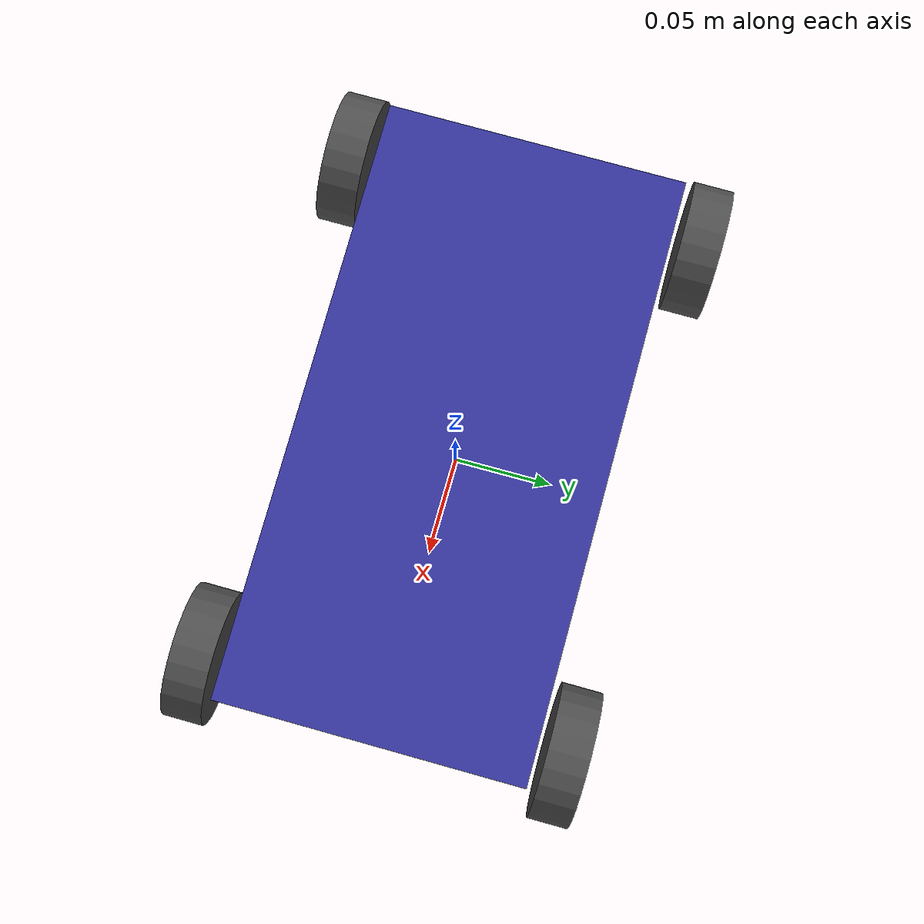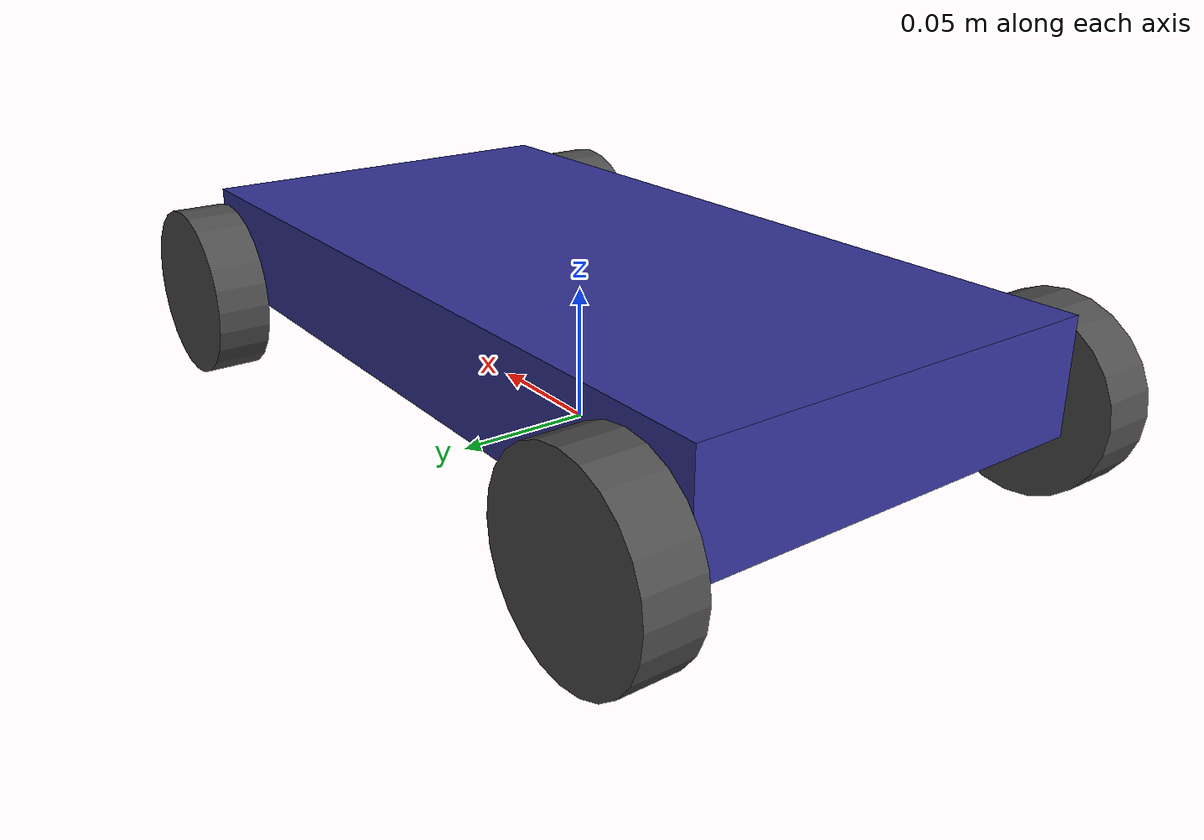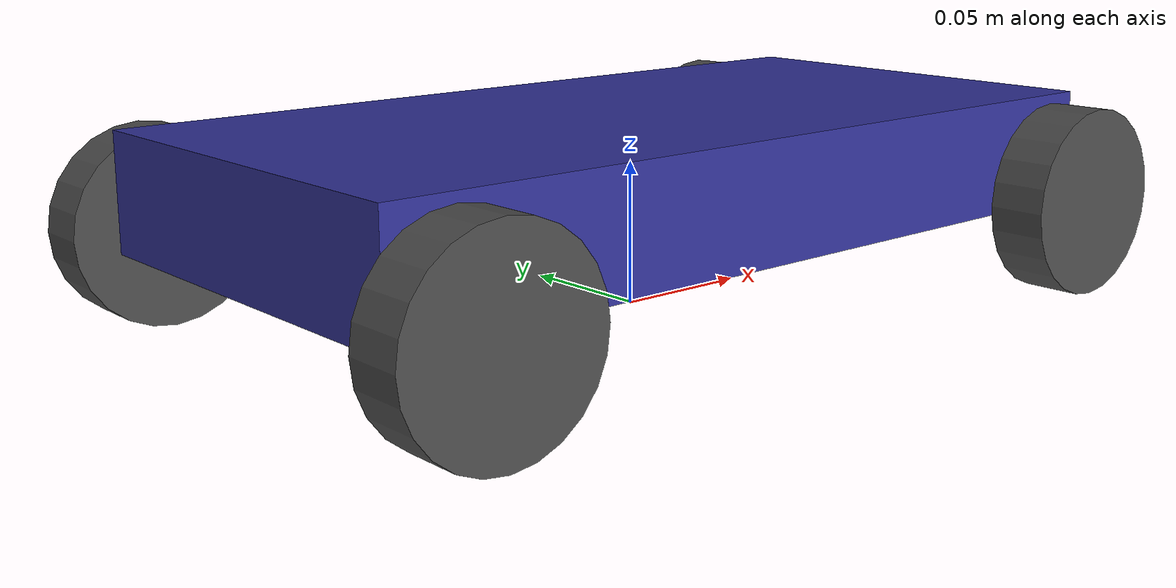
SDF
<?xml version="1.0" ?>
<sdf version="1.8">
  <model name="drift_car">

    <!-- ==================== CHASSIS ==================== -->
    <link name="base_link">
      <pose>0 0 0.048 0 0 0</pose>

      <inertial>
        <mass>1.0</mass>
        <pose>0 0 0 0 0 0</pose>
        <inertia>
          <ixx>0.00192</ixx>
          <ixy>0</ixy>
          <ixz>0</ixz>
          <iyy>0.00763</iyy>
          <iyz>0</iyz>
          <izz>0.00938</izz>
        </inertia>
      </inertial>

      <visual name="chassis_visual">
        <geometry>
          <box>
            <size>0.30 0.15 0.04</size>
          </box>
        </geometry>
        <material>
          <ambient>0.1 0.1 0.4 1</ambient>
          <diffuse>0.2 0.2 0.6 1</diffuse>
          <specular>0.3 0.3 0.3 1</specular>
        </material>
      </visual>

      <collision name="chassis_collision">
        <geometry>
          <box>
            <size>0.30 0.15 0.04</size>
          </box>
        </geometry>
      </collision>
    </link>

    <!-- ==================== REAR LEFT WHEEL ==================== -->
    <link name="rear_left_wheel">
      <pose relative_to="rear_left_wheel_joint">0 0 0 0 0 0</pose>

      <inertial>
        <mass>0.125</mass>
        <inertia>
          <ixx>0.000038</ixx>
          <ixy>0</ixy>
          <ixz>0</ixz>
          <iyy>0.000038</iyy>
          <iyz>0</iyz>
          <izz>0.000068</izz>
        </inertia>
      </inertial>

      <visual name="visual">
        <geometry>
          <cylinder>
            <radius>0.033</radius>
            <length>0.02</length>
          </cylinder>
        </geometry>
        <material>
          <ambient>0.2 0.2 0.2 1</ambient>
          <diffuse>0.3 0.3 0.3 1</diffuse>
        </material>
      </visual>

      <collision name="collision">
        <geometry>
          <sphere>
            <radius>0.033</radius>
          </sphere>
        </geometry>
        <surface>
          <friction>
            <ode>
              <mu>0.5</mu>
              <mu2>0.5</mu2>
              <slip1>0.05</slip1>
              <slip2>0.05</slip2>
            </ode>
          </friction>
        </surface>
      </collision>
    </link>

    <joint name="rear_left_wheel_joint" type="revolute">
      <pose relative_to="base_link">-0.13 0.09 -0.015 -1.5708 0 0</pose>
      <parent>base_link</parent>
      <child>rear_left_wheel</child>
      <axis>
        <xyz>0 0 1</xyz>
        <limit>
          <lower>-1.79769e+308</lower>
          <upper>1.79769e+308</upper>
          <effort>10</effort>
          <velocity>100</velocity>
        </limit>
        <dynamics>
          <damping>0.001</damping>
          <friction>0.001</friction>
        </dynamics>
      </axis>
    </joint>

    <!-- ==================== REAR RIGHT WHEEL ==================== -->
    <link name="rear_right_wheel">
      <pose relative_to="rear_right_wheel_joint">0 0 0 0 0 0</pose>

      <inertial>
        <mass>0.125</mass>
        <inertia>
          <ixx>0.000038</ixx>
          <ixy>0</ixy>
          <ixz>0</ixz>
          <iyy>0.000038</iyy>
          <iyz>0</iyz>
          <izz>0.000068</izz>
        </inertia>
      </inertial>

      <visual name="visual">
        <geometry>
          <cylinder>
            <radius>0.033</radius>
            <length>0.02</length>
          </cylinder>
        </geometry>
        <material>
          <ambient>0.2 0.2 0.2 1</ambient>
          <diffuse>0.3 0.3 0.3 1</diffuse>
        </material>
      </visual>

      <collision name="collision">
        <geometry>
          <sphere>
            <radius>0.033</radius>
          </sphere>
        </geometry>
        <surface>
          <friction>
            <ode>
              <mu>0.5</mu>
              <mu2>0.5</mu2>
              <slip1>0.05</slip1>
              <slip2>0.05</slip2>
            </ode>
          </friction>
        </surface>
      </collision>
    </link>

    <joint name="rear_right_wheel_joint" type="revolute">
      <pose relative_to="base_link">-0.13 -0.09 -0.015 -1.5708 0 0</pose>
      <parent>base_link</parent>
      <child>rear_right_wheel</child>
      <axis>
        <xyz>0 0 1</xyz>
        <limit>
          <lower>-1.79769e+308</lower>
          <upper>1.79769e+308</upper>
          <effort>10</effort>
          <velocity>100</velocity>
        </limit>
        <dynamics>
          <damping>0.001</damping>
          <friction>0.001</friction>
        </dynamics>
      </axis>
    </joint>

    <!-- ==================== FRONT LEFT STEERING + WHEEL ==================== -->
    <link name="front_left_steering_link">
      <pose relative_to="front_left_steering_joint">0 0 0 0 0 0</pose>

      <inertial>
        <mass>0.01</mass>
        <inertia>
          <ixx>0.000001</ixx>
          <ixy>0</ixy>
          <ixz>0</ixz>
          <iyy>0.000001</iyy>
          <iyz>0</iyz>
          <izz>0.000001</izz>
        </inertia>
      </inertial>
    </link>

    <joint name="front_left_steering_joint" type="revolute">
      <pose relative_to="base_link">0.13 0.09 -0.015 0 0 0</pose>
      <parent>base_link</parent>
      <child>front_left_steering_link</child>
      <axis>
        <xyz>0 0 1</xyz>
        <limit>
          <lower>-0.6</lower>
          <upper>0.6</upper>
          <effort>10</effort>
          <velocity>5</velocity>
        </limit>
        <dynamics>
          <damping>0.01</damping>
          <friction>0.0</friction>
        </dynamics>
      </axis>
    </joint>

    <link name="front_left_wheel">
      <pose relative_to="front_left_wheel_joint">0 0 0 0 0 0</pose>

      <inertial>
        <mass>0.125</mass>
        <inertia>
          <ixx>0.000038</ixx>
          <ixy>0</ixy>
          <ixz>0</ixz>
          <iyy>0.000038</iyy>
          <iyz>0</iyz>
          <izz>0.000068</izz>
        </inertia>
      </inertial>

      <visual name="visual">
        <geometry>
          <cylinder>
            <radius>0.033</radius>
            <length>0.02</length>
          </cylinder>
        </geometry>
        <material>
          <ambient>0.2 0.2 0.2 1</ambient>
          <diffuse>0.3 0.3 0.3 1</diffuse>
        </material>
      </visual>

      <collision name="collision">
        <geometry>
          <sphere>
            <radius>0.033</radius>
          </sphere>
        </geometry>
        <surface>
          <friction>
            <ode>
              <mu>1.0</mu>
              <mu2>1.0</mu2>
              <slip1>0.0</slip1>
              <slip2>0.0</slip2>
            </ode>
          </friction>
        </surface>
      </collision>
    </link>

    <joint name="front_left_wheel_joint" type="revolute">
      <pose relative_to="front_left_steering_link">0 0 0 -1.5708 0 0</pose>
      <parent>front_left_steering_link</parent>
      <child>front_left_wheel</child>
      <axis>
        <xyz>0 0 1</xyz>
        <limit>
          <lower>-1.79769e+308</lower>
          <upper>1.79769e+308</upper>
          <effort>0</effort>
          <velocity>100</velocity>
        </limit>
        <dynamics>
          <damping>0.0001</damping>
          <friction>0.0001</friction>
        </dynamics>
      </axis>
    </joint>

    <!-- ==================== FRONT RIGHT STEERING + WHEEL ==================== -->
    <link name="front_right_steering_link">
      <pose relative_to="front_right_steering_joint">0 0 0 0 0 0</pose>

      <inertial>
        <mass>0.01</mass>
        <inertia>
          <ixx>0.000001</ixx>
          <ixy>0</ixy>
          <ixz>0</ixz>
          <iyy>0.000001</iyy>
          <iyz>0</iyz>
          <izz>0.000001</izz>
        </inertia>
      </inertial>
    </link>

    <joint name="front_right_steering_joint" type="revolute">
      <pose relative_to="base_link">0.13 -0.09 -0.015 0 0 0</pose>
      <parent>base_link</parent>
      <child>front_right_steering_link</child>
      <axis>
        <xyz>0 0 1</xyz>
        <limit>
          <lower>-0.6</lower>
          <upper>0.6</upper>
          <effort>10</effort>
          <velocity>5</velocity>
        </limit>
        <dynamics>
          <damping>0.01</damping>
          <friction>0.0</friction>
        </dynamics>
      </axis>
    </joint>

    <link name="front_right_wheel">
      <pose relative_to="front_right_wheel_joint">0 0 0 0 0 0</pose>

      <inertial>
        <mass>0.125</mass>
        <inertia>
          <ixx>0.000038</ixx>
          <ixy>0</ixy>
          <ixz>0</ixz>
          <iyy>0.000038</iyy>
          <iyz>0</iyz>
          <izz>0.000068</izz>
        </inertia>
      </inertial>

      <visual name="visual">
        <geometry>
          <cylinder>
            <radius>0.033</radius>
            <length>0.02</length>
          </cylinder>
        </geometry>
        <material>
          <ambient>0.2 0.2 0.2 1</ambient>
          <diffuse>0.3 0.3 0.3 1</diffuse>
        </material>
      </visual>

      <collision name="collision">
        <geometry>
          <sphere>
            <radius>0.033</radius>
          </sphere>
        </geometry>
        <surface>
          <friction>
            <ode>
              <mu>1.0</mu>
              <mu2>1.0</mu2>
              <slip1>0.0</slip1>
              <slip2>0.0</slip2>
            </ode>
          </friction>
        </surface>
      </collision>
    </link>

    <joint name="front_right_wheel_joint" type="revolute">
      <pose relative_to="front_right_steering_link">0 0 0 -1.5708 0 0</pose>
      <parent>front_right_steering_link</parent>
      <child>front_right_wheel</child>
      <axis>
        <xyz>0 0 1</xyz>
        <limit>
          <lower>-1.79769e+308</lower>
          <upper>1.79769e+308</upper>
          <effort>0</effort>
          <velocity>100</velocity>
        </limit>
        <dynamics>
          <damping>0.0001</damping>
          <friction>0.0001</friction>
        </dynamics>
      </axis>
    </joint>

    <!-- ==================== ACKERMANN STEERING PLUGIN ==================== -->
    <plugin
      filename="gz-sim-ackermann-steering-system"
      name="gz::sim::systems::AckermannSteering">

      <!-- Drive wheels (rear) -->
      <left_joint>rear_left_wheel_joint</left_joint>
      <right_joint>rear_right_wheel_joint</right_joint>

      <!-- Steering joints (front) -->
      <left_steering_joint>front_left_steering_joint</left_steering_joint>
      <right_steering_joint>front_right_steering_joint</right_steering_joint>

      <!-- Geometry -->
      <wheel_base>0.26</wheel_base>
      <wheel_separation>0.18</wheel_separation>
      <kingpin_width>0.16</kingpin_width>
      <wheel_radius>0.033</wheel_radius>
      <steering_limit>0.6</steering_limit>

      <!-- Velocity limits -->
      <min_velocity>-1.0</min_velocity>
      <max_velocity>1.0</max_velocity>
      <min_acceleration>-2.0</min_acceleration>
      <max_acceleration>2.0</max_acceleration>

      <!-- Odometry -->
      <odom_publish_frequency>50</odom_publish_frequency>
      <odom_topic>odometry</odom_topic>
      <tf_topic>tf</tf_topic>
      <frame_id>odom</frame_id>
      <child_frame_id>base_link</child_frame_id>

    </plugin>

    <!-- Publish joint states for monitoring -->
    <plugin
      filename="gz-sim-joint-state-publisher-system"
      name="gz::sim::systems::JointStatePublisher">
      <joint_name>front_left_steering_joint</joint_name>
      <joint_name>front_right_steering_joint</joint_name>
      <joint_name>front_left_wheel_joint</joint_name>
      <joint_name>front_right_wheel_joint</joint_name>
      <joint_name>rear_left_wheel_joint</joint_name>
      <joint_name>rear_right_wheel_joint</joint_name>
    </plugin>

  </model>
</sdf>
